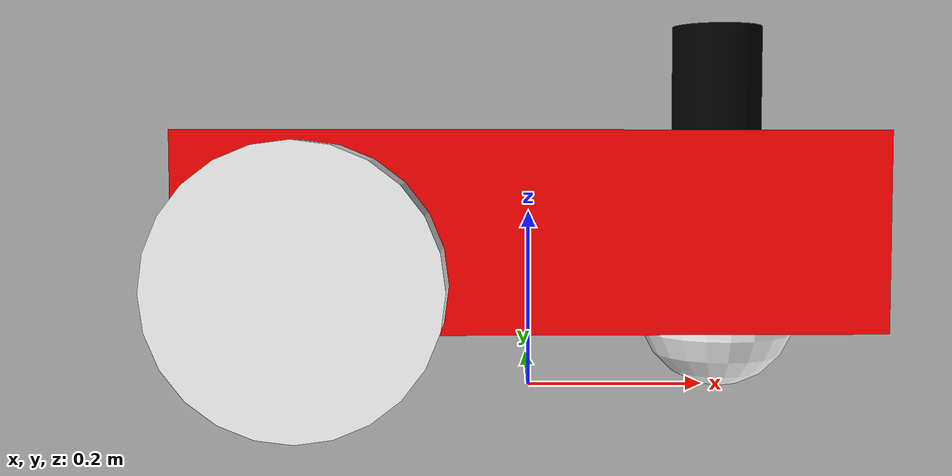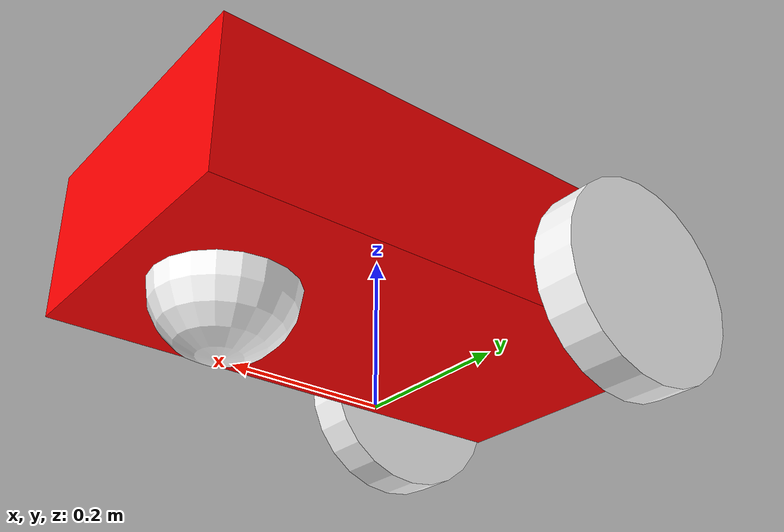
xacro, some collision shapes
<?xml version="1.0" ?>
<robot name="two_wheeled_robot" xmlns:xacro="http://ros.org/wiki/xacro">

  <!-- ****************** ROBOT CONSTANTS *******************************  -->
  <!-- Define the size of the robot's main chassis in meters -->
  <xacro:property name="base_width" value="0.39"/>
  <xacro:property name="base_length" value="0.70"/>
  <xacro:property name="base_height" value="0.20"/>

  <!-- Define the shape of the robot's two back wheels in meters -->
  <xacro:property name="wheel_radius" value="0.14"/>
  <xacro:property name="wheel_width" value="0.06"/>

  <!-- x-axis points forward, y-axis points to left, z-axis points upwards -->
  <!-- Define the gap between the wheel and chassis along y-axis in meters -->
  <xacro:property name="wheel_ygap" value="0.035"/>

  <!-- Position the wheels along the z-axis -->
  <xacro:property name="wheel_zoff" value="0.05"/>

  <!-- Position the wheels along the x-axis -->
  <xacro:property name="wheel_xoff" value="0.221"/>

  <!-- Position the caster wheel along the x-axis -->
  <xacro:property name="caster_xoff" value="0.217"/>

  <!-- Define intertial property macros  -->
  <xacro:macro name="box_inertia" params="m w h d">
    <inertial>
      <origin xyz="0 0 0" rpy="${pi/2} 0 ${pi/2}"/>
      <mass value="${m}"/>
      <inertia ixx="${(m/12) * (h*h + d*d)}" ixy="0.0" ixz="0.0" iyy="${(m/12) * (w*w + d*d)}" iyz="0.0" izz="${(m/12) * (w*w + h*h)}"/>
    </inertial>
  </xacro:macro>

  <xacro:macro name="cylinder_inertia" params="m r h">
    <inertial>
      <origin xyz="0 0 0" rpy="${pi/2} 0 0" />
      <mass value="${m}"/>
      <inertia ixx="${(m/12) * (3*r*r + h*h)}" ixy = "0" ixz = "0" iyy="${(m/12) * (3*r*r + h*h)}" iyz = "0" izz="${(m/2) * (r*r)}"/>
    </inertial>
  </xacro:macro>

  <xacro:macro name="sphere_inertia" params="m r">
    <inertial>
      <mass value="${m}"/>
      <inertia ixx="${(2/5) * m * (r*r)}" ixy="0.0" ixz="0.0" iyy="${(2/5) * m * (r*r)}" iyz="0.0" izz="${(2/5) * m * (r*r)}"/>
    </inertial>
  </xacro:macro>

  <!-- ****************** ROBOT BASE FOOTPRINT ***************************  -->
  <!-- Define the center of the main robot chassis projected on the ground -->
  <link name="base_footprint"/>

  <!-- The base footprint of the robot is located underneath the chassis -->
  <joint name="base_joint" type="fixed">
    <parent link="base_footprint"/>
    <child link="base_link" />
    <origin xyz="0.0 0.0 ${(wheel_radius+wheel_zoff)}" rpy="0 0 0"/>
  </joint>

  <!-- ********************** ROBOT BASE *********************************  -->
  <link name="base_link">
    <visual>
      <origin xyz="0 0 -0.05" rpy="1.5707963267949 0 3.141592654"/>
      <geometry>
        <mesh filename="package://first_urdf_tutorial/meshes/robot_base.stl" />
      </geometry>
      <material name="Red">
        <color rgba="${255/255} ${0/255} ${0/255} 1.0"/>
      </material>
    </visual>

    <collision>
      <geometry>
        <box size="${base_length} ${base_width} ${base_height}"/>
      </geometry>
    </collision>

    <xacro:box_inertia m="40.0" w="${base_width}" d="${base_length}" h="${base_height}"/>

  </link>

  <gazebo reference="base_link">
    <material>Gazebo/Red</material>
  </gazebo>

  <!-- *********************** DRIVE WHEELS ******************************  -->

  <xacro:macro name="wheel" params="prefix x_reflect y_reflect">
    <link name="${prefix}_link">
      <visual>
        <origin xyz="0 0 0" rpy="1.5707963267949 0 0"/>
        <geometry>
            <cylinder radius="${wheel_radius}" length="${wheel_width}"/>
        </geometry>
        <material name="White">
          <color rgba="${255/255} ${255/255} ${255/255} 1.0"/>
        </material>
      </visual>

      <collision>
        <origin xyz="0 0 0" rpy="${pi/2} 0 0"/>
        <geometry>
          <cylinder radius="${wheel_radius}" length="${wheel_width}"/>
        </geometry>
      </collision>

      <xacro:cylinder_inertia m="110.5" r="${wheel_radius}" h="${wheel_width}"/>

    </link>

    <!-- Connect the wheels to the base_link at the appropriate location, and
         define a continuous joint to allow the wheels to freely rotate about
         an axis -->
    <joint name="${prefix}_joint" type="revolute">
      <parent link="base_link"/>
      <child link="${prefix}_link"/>
      <origin xyz="${x_reflect*wheel_xoff} ${y_reflect*(base_width/2+wheel_ygap)} ${-wheel_zoff}" rpy="0 0 0"/>
      <limit upper="3.1415" lower="-3.1415" effort="30" velocity="5.0"/>
      <axis xyz="0 1 0"/>
    </joint>
  </xacro:macro>

  <xacro:wheel prefix="drivewhl_l" x_reflect="-1" y_reflect="1" />
  <xacro:wheel prefix="drivewhl_r" x_reflect="-1" y_reflect="-1" />

  <!-- *********************** CASTER WHEEL ******************************  -->
  <!-- We add a caster wheel. It will be modeled as sphere.
       We define the wheel’s geometry, material and the joint to connect it to
       base_link at the appropriate location. -->
  <link name="front_caster">
    <visual>
      <geometry>
        <sphere radius="${(wheel_radius+wheel_zoff-(base_height/2))}"/>
      </geometry>
      <material name="White">
        <color rgba="${255/255} ${255/255} ${255/255} 1.0"/>
      </material>
    </visual>
    <collision>
      <origin xyz="0 0 0" rpy="0 0 0"/>
      <geometry>
        <sphere radius="${(wheel_radius+wheel_zoff-(base_height/2))}"/>
      </geometry>
    </collision>
    <xacro:sphere_inertia m="10.05" r="${(wheel_radius+wheel_zoff-(base_height/2))}"/>
  </link>

  <gazebo reference="front_caster">
    <mu1>0.01</mu1>
    <mu2>0.01</mu2>
    <material>Gazebo/White</material>
  </gazebo>

  <joint name="caster_joint" type="fixed">
    <parent link="base_link"/>
    <child link="front_caster"/>
    <origin xyz="${caster_xoff} 0.0 ${-(base_height/2)}" rpy="0 0 0"/>
  </joint>

  <!-- *********************** IMU SETUP *********************************  -->
  <!-- Each sensor must be attached to a link.                              -->

  <joint name="imu_joint" type="fixed">
    <parent link="base_link"/>
    <child link="imu_link"/>
    <origin xyz="-0.10 0 0.05" rpy="0 0 0"/>
  </joint>

  <link name="imu_link"/>

  <!-- *********************** LIDAR SETUP **********************************  -->
  <joint name="lidar_joint" type="fixed">
    <parent link="base_link"/>
    <child link="lidar_link"/>
    <origin xyz="0.215 0 0.13" rpy="0 0 0"/>
  </joint>

  <link name="lidar_link">

    <collision>
     <origin xyz="0 0 0" rpy="0 0 0"/>
     <geometry>
      <cylinder radius="0.0508" length="0.18"/>
     </geometry>
    </collision>

    <visual>
     <origin xyz="0 0 0" rpy="0 0 0"/>
     <geometry>
      <cylinder radius="0.0508" length="0.18"/>
     </geometry>
     <material name="Black">
          <color rgba="${0/255} ${0/255} ${0/255} 1.0"/>
     </material>
    </visual>

    <inertial>
      <mass value="0.114" />
      <origin xyz="0 0 0" rpy="0 0 0"/>
      <inertia ixx="0.001" ixy="0" ixz="0" iyy="0.001" iyz="0" izz="0.001" />
    </inertial>
  </link>
<gazebo>
  <plugin name="gazebo_ros_control" filename="libgazebo_ros_control.so">
    <robotNamespace>/</robotNamespace>
  </plugin>
</gazebo>
<transmission name="drivewhl_l_trans">
  <type>transmission_interface/SimpleTransmission</type>
  <joint name="drivewhl_l_joint">
    <hardwareInterface>hardware_interface/VelocityJointInterface</hardwareInterface>
  </joint>
  <actuator name="drivewhl_l_motor">
    <mechanicalReduction>1.0</mechanicalReduction>
  </actuator>
</transmission>

<transmission name="drivewhl_r_trans">
  <type>transmission_interface/SimpleTransmission</type>
  <joint name="drivewhl_r_joint">
    <hardwareInterface>hardware_interface/VelocityJointInterface</hardwareInterface>
  </joint>
  <actuator name="drivewhl_r_motor">
    <mechanicalReduction>1.0</mechanicalReduction>
  </actuator>
</transmission>

</robot>
